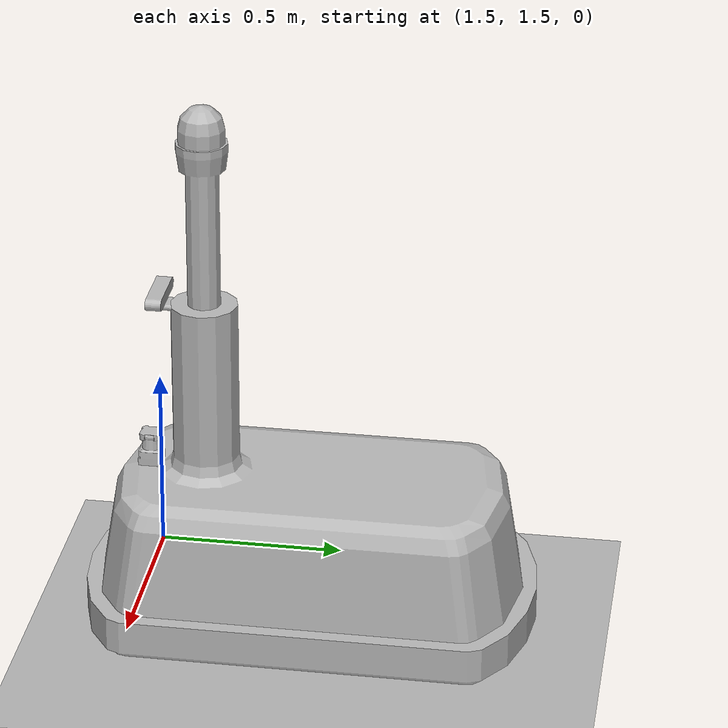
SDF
<?xml version='1.0' encoding='ASCII'?>
<sdf version='1.7'>
  <world name='warehouse_01'>
    <gravity>0 0 -9.8</gravity>
    <physics type='ode'>
      <max_step_size>0.01</max_step_size>
      <real_time_factor>1</real_time_factor>
      <max_contacts>10</max_contacts>
    </physics>
    <plugin name='ignition::gazebo::systems::Physics' filename='libignition-gazebo-physics-system.so'/>
    <plugin name='ignition::gazebo::systems::UserCommands' filename='libignition-gazebo-user-commands-system.so'/>
    <plugin name='ignition::gazebo::systems::SceneBroadcaster' filename='libignition-gazebo-scene-broadcaster-system.so'/>
    <plugin name='ignition::gazebo::systems::Imu' filename='ignition-gazebo-imu-system'/>
    <plugin name='ignition::gazebo::systems::Sensors' filename='ignition-gazebo-sensors-system'>
      <render_engine>ogre2</render_engine>
    </plugin>

    <gui fullscreen="1">

      <!-- 3D scene -->
      <plugin filename="GzScene3D" name="3D View">
        <ignition-gui>
          <title>3D View</title>
          <property type="bool" key="showTitleBar">false</property>
          <property type="string" key="state">docked</property>
        </ignition-gui>

        <engine>ogre2</engine>
        <scene>scene</scene>
        <ambient_light>0.4 0.4 0.4</ambient_light>
        <background_color>0.8 0.8 0.8</background_color>
        <camera_pose>0.0 21.4 9.0  0.0 0.5779 -1.5249</camera_pose>
      </plugin>

      <!-- World control -->
      <plugin filename="WorldControl" name="World control">
        <ignition-gui>
          <title>World control</title>
          <property type="bool" key="showTitleBar">false</property>
          <property type="bool" key="resizable">false</property>
          <property type="double" key="height">72</property>
          <property type="double" key="width">121</property>
          <property type="double" key="z">1</property>

          <property type="string" key="state">floating</property>
          <anchors target="3D View">
            <line own="left" target="left"/>
            <line own="bottom" target="bottom"/>
          </anchors>
        </ignition-gui>

        <play_pause>true</play_pause>
        <step>true</step>
        <start_paused>true</start_paused>

      </plugin>

      <!-- World statistics -->
      <plugin filename="WorldStats" name="World stats">
        <ignition-gui>
          <title>World stats</title>
          <property type="bool" key="showTitleBar">false</property>
          <property type="bool" key="resizable">false</property>
          <property type="double" key="height">110</property>
          <property type="double" key="width">290</property>
          <property type="double" key="z">1</property>

          <property type="string" key="state">floating</property>
          <anchors target="3D View">
            <line own="right" target="right"/>
            <line own="bottom" target="bottom"/>
          </anchors>
        </ignition-gui>

        <sim_time>true</sim_time>
        <real_time>true</real_time>
        <real_time_factor>true</real_time_factor>
        <iterations>true</iterations>
      </plugin>

      <plugin filename="TransformControl" name="Transform control">
          <ignition-gui>
              <property type="bool" key="showTitleBar">false</property>
              <property key="x" type="double">0</property>
              <property key="y" type="double">0</property>
              <property key="width" type="double">250</property>
              <property key="height" type="double">50</property>
              <property key="state" type="string">floating</property>
              <property key="cardBackground" type="string">#666666</property>
          </ignition-gui>
      </plugin>
      <plugin filename="Shapes" name="Shapes">
          <ignition-gui>
              <property type="bool" key="showTitleBar">false</property>
              <property key="x" type="double">250</property>
              <property key="y" type="double">0</property>
              <property key="width" type="double">150</property>
              <property key="height" type="double">50</property>
              <property key="state" type="string">floating</property>
              <property key="cardBackground" type="string">#666666</property>
          </ignition-gui>
      </plugin>
      <plugin filename="Screenshot" name="Screenshot">
          <ignition-gui>
              <property type="bool" key="showTitleBar">false</property>
              <property key="x" type="double">400</property>
              <property key="y" type="double">0</property>
              <property key="width" type="double">50</property>
              <property key="height" type="double">50</property>
              <property key="state" type="string">floating</property>
              <property key="cardBackground" type="string">#666666</property>
          </ignition-gui>
      </plugin>
      <plugin filename="ComponentInspector" name="Component inspector">
          <ignition-gui>
              <property key="x" type="double">0</property>
              <property key="y" type="double">0</property>
              <property key="width" type="double">400</property>
              <property key="height" type="double">375</property>
              <property key="state" type="string">docked_collapsed</property>
          </ignition-gui>
      </plugin>
      <plugin filename="EntityTree" name="Entity tree">
          <ignition-gui>
              <property key="x" type="double">0</property>
              <property key="y" type="double">0</property>
              <property key="width" type="double">400</property>
              <property key="height" type="double">375</property>
              <property key="state" type="string">docked_collapsed</property>
          </ignition-gui>
      </plugin>
    </gui>

    <scene>
      <ambient>1 1 1 1</ambient>
      <background>0.3 0.7 0.9 1</background>
      <shadows>1</shadows>
      <grid>true</grid>
    </scene>

    <light type="directional" name="sun">
      <cast_shadows>0</cast_shadows>
      <pose>-5 -3 10 0 0 0</pose>
      <diffuse>1 1 1 1</diffuse>
      <specular>1 1 1 1</specular>
      <direction>0 0 -1</direction>
    </light>

    <model name='ground_plane'>
      <static>true</static>
      <link name='link'>
        <collision name='collision'>
          <geometry>
            <plane>
              <normal>0 0 1</normal>
              <size>100 100</size>
            </plane>
          </geometry>
        </collision>
        <visual name='visual'>
          <geometry>
            <plane>
              <normal>0 0 1</normal>
              <size>100 100</size>
            </plane>
          </geometry>
          <material>
            <ambient>0.9 0.9 0.9 1</ambient>
            <diffuse>0.7 0.7 0.7 1</diffuse>
          </material>
        </visual>
      </link>
      <pose>0 0 0 0 0 0</pose>
    </model>

    <include>
      <uri>model://warehouse_robot</uri>
      <name>warehouse_robot</name>
      <pose>2 2 0.1 0 0 0</pose>
    </include>

  </world>
</sdf>

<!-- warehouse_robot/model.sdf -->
<sdf version="1.6">
  <model name="warehouse_robot">
    <static>false</static>
    <!-- base_link (robot body) -->
    <link name="base_link">
      <visual name="visual">
        <geometry>
          <mesh>
            <uri>meshes/robot.dae</uri>
          </mesh>
        </geometry>
      </visual>
      <collision name="collision_base">
        <pose>0 0 0.20437 0 0 0</pose>
        <geometry>
          <box>
            <size>0.55508 1.0228 0.40874</size>
          </box>
        </geometry>
      </collision>
      <collision name="collision_bumper">
        <pose>0 0 0.062205 0 0 0</pose>
        <geometry>
          <box>
            <size>0.67266 1.17126 0.12441</size>
          </box>
        </geometry>
      </collision>
      <collision name="collision_column_large">
        <pose>0 -0.27539 0.43738 0 0 0</pose>
        <geometry>
          <cylinder>
            <radius>0.08652</radius>
            <length>0.87476</length>
          </cylinder>
        </geometry>
      </collision>
      <collision name="collision_column_small">
        <pose>0 -0.27539 0.70424 0 0 0</pose>
        <geometry>
          <cylinder>
            <radius>0.04261</radius>
            <length>1.40848</length>
          </cylinder>
        </geometry>
      </collision>
      <visual name="visual_camera">
        <pose>0 -0.37 0.86 0 0 0</pose>
        <geometry>
          <mesh>
            <uri>model://rgbd_camera/meshes/3dCamera.dae</uri>
          </mesh>
        </geometry>
      </visual>
      <visual name="visual_lidar2d">
        <pose>0 -0.42 0.415 0 0 0</pose>
        <geometry>
          <mesh>
            <uri>model://lidar_2d/meshes/lidar_2d.dae</uri>
          </mesh>
        </geometry>
      </visual>

      <!-- Sensors: Camera, Lidar, IMU -->
      <!-- FRONT CAMERA -->
      <sensor name="front_camera" type="camera">
        <!-- Relativa Pose to base_link -->
        <pose>0 -0.37 0.86 0 0 -1.5708</pose>
        <update_rate>30</update_rate>
        <always_on>true</always_on>
        <visualize>true</visualize>
        <topic>/robot/camera/image</topic> <!-- Topic in Gazebo -->
        <camera>
          <horizontal_fov>1.047</horizontal_fov>
          <image>
            <width>640</width>
            <height>480</height>
            <format>R8G8B8</format>
          </image>
          <clip>
            <near>0.1</near>
            <far>50.0</far>
          </clip>
        </camera>
        <gz_frame_id>base_link</gz_frame_id>
      </sensor>
      <!-- LIDAR 2D (type “planar”  360°) -->
      <sensor name="lidar_2d" type="gpu_lidar">
        <pose>0.0 0 0.25 0 0 0</pose>
        <update_rate>20</update_rate>
        <always_on>true</always_on>
        <visualize>true</visualize>
        <topic>/robot/lidar2d/scan</topic>
        <lidar>
          <scan>
            <horizontal>
              <samples>920</samples>
              <resolution>1</resolution>
              <min_angle>-3.14159</min_angle>
              <max_angle>3.14159</max_angle>
            </horizontal>
          </scan>
          <range>
            <min>0.5</min>
            <max>10</max>
            <resolution>0.03</resolution>
          </range>
          <noise>
            <type>gaussian</type>
            <mean>0</mean>
            <stddev>0.01</stddev>
          </noise>
        </lidar>
        <gz_frame_id>base_link</gz_frame_id>
      </sensor>
      <!-- LIDAR 3D (type Velodyne / Ouster simple) -->
      <sensor name="lidar_3d" type="gpu_lidar">
        <pose>0.0 0 1.5 0 0 0</pose>
        <update_rate>10</update_rate>
        <always_on>true</always_on>
        <visualize>true</visualize>
        <topic>/robot/lidar3d</topic>
        <lidar>
          <scan>
            <horizontal>
              <samples>1024</samples>
              <resolution>1</resolution>
              <min_angle>-3.14159</min_angle>
              <max_angle>3.14159</max_angle>
            </horizontal>
            <vertical>
              <samples>64</samples>
              <resolution>1</resolution>
              <min_angle>-0.2897</min_angle>
              <max_angle>0.2897</max_angle>
            </vertical>
          </scan>
          <range>
            <min>0.8</min>
            <max>20</max>
            <resolution>0.003</resolution>
          </range>
          <noise>
            <type>gaussian</type>
            <mean>0</mean>
            <stddev>0.03</stddev>
          </noise>
        </lidar>
        <gz_frame_id>base_link</gz_frame_id>
      </sensor>
      <!-- IMU -->
      <sensor name="imu" type="imu">
        <pose>0 0 0.2 0 0 0</pose>
        <update_rate>100</update_rate>
        <always_on>true</always_on>
        <topic>/robot/imu</topic>
        <imu>
        </imu>
        <gz_frame_id>base_link</gz_frame_id>
      </sensor>
    </link>
    <!-- Ruedas: links + joints  -->
    <!-- FRONT LEFT WHEEL -->
    <link name="left_front_wheel_link">
      <pose>0.25 0.26 0.129 0 1.57 0</pose>
      <inertial>
        <mass>1.0</mass>
        <inertia>
          <ixx>0.001</ixx>
          <ixy>0.0</ixy>
          <ixz>0.0</ixz>
          <iyy>0.001</iyy>
          <iyz>0.0</iyz>
          <izz>0.001</izz>
        </inertia>
      </inertial>
      <collision name="left_front_wheel_collision">
        <geometry>
          <cylinder>
            <radius>0.129</radius>
            <length>0.05</length>
          </cylinder>
        </geometry>
      </collision>
      <visual name="left_front_wheel_visual">
        <geometry>
          <cylinder>
            <radius>0.129</radius>
            <length>0.05</length>
          </cylinder>
        </geometry>
      </visual>
    </link>
    <joint name="left_front_wheel" type="revolute">
      <parent>base_link</parent>
      <child>left_front_wheel_link</child>
      <pose>0 0 0 0 0 0</pose>
        <axis>
            <xyz>0 0 1</xyz>
            <limit>
              <lower>-1.79769e+308</lower>
              <upper>1.79769e+308</upper>
            </limit>
        </axis>
    </joint>
    <!-- REAR LEFT WHEEL -->
    <link name="left_rear_wheel_link">
      <pose>-0.25 0.26 0.129 0 1.57 0</pose>
      <inertial>
        <mass>1.0</mass>
        <inertia>
          <ixx>0.001</ixx>
          <ixy>0.0</ixy>
          <ixz>0.0</ixz>
          <iyy>0.001</iyy>
          <iyz>0.0</iyz>
          <izz>0.001</izz>
        </inertia>
      </inertial>
      <collision name="left_rear_wheel_collision">
        <geometry>
          <cylinder>
            <radius>0.129</radius>
            <length>0.05</length>
          </cylinder>
        </geometry>
      </collision>
      <visual name="left_rear_wheel_visual">
        <geometry>
          <cylinder>
            <radius>0.129</radius>
            <length>0.05</length>
          </cylinder>
        </geometry>
      </visual>
    </link>
    <joint name="left_rear_wheel" type="revolute">
      <parent>base_link</parent>
      <child>left_rear_wheel_link</child>
      <pose>0 0 0 0 0 0</pose>
         <axis>
            <xyz>0 0 1</xyz>
            <limit>
              <lower>-1.79769e+308</lower>
              <upper>1.79769e+308</upper>
            </limit>
        </axis>
    </joint>
    <!-- FRONT RIGHT WHEEL -->
    <link name="right_front_wheel_link">
      <pose>0.25 -0.26 0.129 0 1.57 0</pose>
      <inertial>
        <mass>1.0</mass>
        <inertia>
          <ixx>0.001</ixx>
          <ixy>0.0</ixy>
          <ixz>0.0</ixz>
          <iyy>0.001</iyy>
          <iyz>0.0</iyz>
          <izz>0.001</izz>
        </inertia>
      </inertial>
      <collision name="right_front_wheel_collision">
        <geometry>
          <cylinder>
            <radius>0.129</radius>
            <length>0.05</length>
          </cylinder>
        </geometry>
      </collision>
      <visual name="right_front_wheel_visual">
        <geometry>
          <cylinder>
            <radius>0.129</radius>
            <length>0.05</length>
          </cylinder>
        </geometry>
      </visual>
    </link>
    <joint name="right_front_wheel" type="revolute">
      <parent>base_link</parent>
      <child>right_front_wheel_link</child>
      <pose>0 0 0 0 0 0</pose>
        <axis>
            <xyz>0 0 1</xyz>
            <limit>
              <lower>-1.79769e+308</lower>
              <upper>1.79769e+308</upper>
            </limit>
        </axis>
    </joint>
    <!-- REAR RIGHT WHEEL -->
    <link name="right_rear_wheel_link">
      <pose>-0.25 -0.26 0.129 0 1.57 0</pose>
      <inertial>
        <mass>1.0</mass>
        <inertia>
          <ixx>0.001</ixx>
          <ixy>0.0</ixy>
          <ixz>0.0</ixz>
          <iyy>0.001</iyy>
          <iyz>0.0</iyz>
          <izz>0.001</izz>
        </inertia>
      </inertial>
      <collision name="right_rear_wheel_collision">
        <geometry>
          <cylinder>
            <radius>0.129</radius>
            <length>0.05</length>
          </cylinder>
        </geometry>
      </collision>
      <visual name="right_rear_wheel_visual">
        <geometry>
          <cylinder>
            <radius>0.129</radius>
            <length>0.05</length>
          </cylinder>
        </geometry>
      </visual>
    </link>
    <joint name="right_rear_wheel" type="revolute">
      <parent>base_link</parent>
      <child>right_rear_wheel_link</child>
      <pose>0 0 0 0 0 0</pose>
         <axis>
            <xyz>0 0 1</xyz>
            <limit>
              <lower>-1.79769e+308</lower>
              <upper>1.79769e+308</upper>
            </limit>
        </axis>
    </joint>
    <!-- Plugin DiffDrive        -->
    <plugin filename="libignition-gazebo-diff-drive-system.so" name="ignition::gazebo::systems::DiffDrive">
      <left_joint>left_front_wheel</left_joint>
      <left_joint>left_rear_wheel</left_joint>
      <right_joint>right_front_wheel</right_joint>
      <right_joint>right_rear_wheel</right_joint>
      <wheel_separation>0.52</wheel_separation>
      <wheel_radius>0.129</wheel_radius>
      <odom_publish_frequency>10</odom_publish_frequency>
      <topic>/robot/cmd_vel</topic>
      <odom_topic>/robot/odometry</odom_topic>
      <tf_topic>/robot/tf_odom_to_baselink</tf_topic>
      <frame_id>odom</frame_id>
      <child_frame_id>/base_link</child_frame_id>
    </plugin>
  </model>
</sdf>
